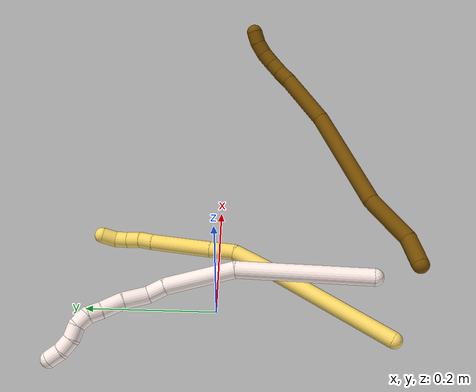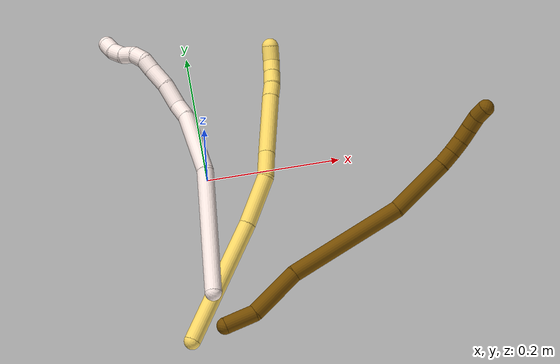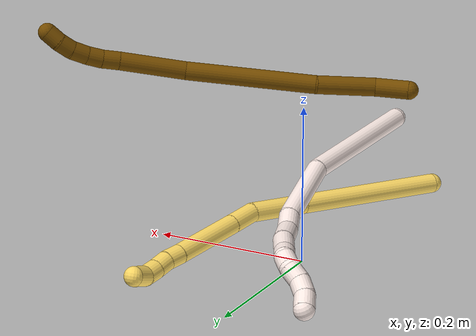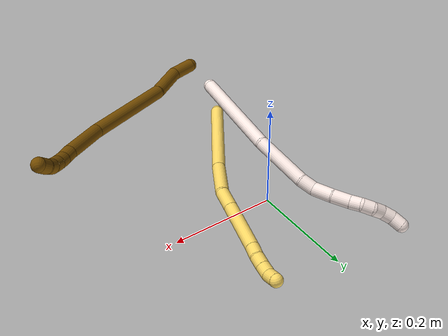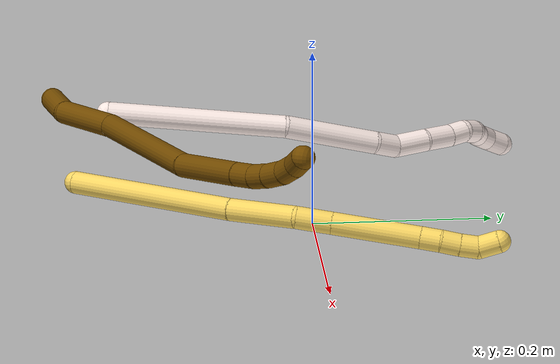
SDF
<sdf version="1.7">
 <world name="default">
  <model name="5">
   <static>0</static>
   <link name="5">
    <collision name="collision-cylinder-e_1_1_4">
     <pose>0.041323 0.085266 -0.027935 -1.88739 0.431592 -0.587481</pose>
     <geometry><cylinder><radius>0.0125</radius><length>0.197567</length></cylinder></geometry>
     <surface>
      <friction><ode><mu>1.16</mu><mu2>1.16</mu2><slip1>0</slip1><slip2>0</slip2></ode></friction>
      <contact><ode><kp>1e+06</kp><kd>1</kd><max_vel>0</max_vel><min_depth>0.001</min_depth></ode></contact>
     </surface>
    </collision>
    <visual name="visual-cylinder-e_1_1_4">
     <pose>0.041323 0.085266 -0.027935 -1.88739 0.431592 -0.587481</pose>
     <geometry><cylinder><radius>0.0125</radius><length>0.197567</length></cylinder></geometry>
     <material><ambient>1 0.858824 0.4 1</ambient></material>
    </visual>
    <collision name="collision-cylinder-e_2_4_5">
     <pose>0.096632 0.205604 -0.066638 -1.86871 0.364215 -0.488404</pose>
     <geometry><cylinder><radius>0.0125</radius><length>0.078527</length></cylinder></geometry>
     <surface>
      <friction><ode><mu>1.16</mu><mu2>1.16</mu2><slip1>0</slip1><slip2>0</slip2></ode></friction>
      <contact><ode><kp>1e+06</kp><kd>1</kd><max_vel>0</max_vel><min_depth>0.001</min_depth></ode></contact>
     </surface>
    </collision>
    <visual name="visual-cylinder-e_2_4_5">
     <pose>0.096632 0.205604 -0.066638 -1.86871 0.364215 -0.488404</pose>
     <geometry><cylinder><radius>0.0125</radius><length>0.078527</length></cylinder></geometry>
     <material><ambient>1 0.858824 0.4 1</ambient></material>
    </visual>
    <collision name="collision-cylinder-e_3_5_6">
     <pose>0.112134 0.257851 -0.086871 -2.07444 0.077148 -0.130477</pose>
     <geometry><cylinder><radius>0.0125</radius><length>0.039338</length></cylinder></geometry>
     <surface>
      <friction><ode><mu>1.16</mu><mu2>1.16</mu2><slip1>0</slip1><slip2>0</slip2></ode></friction>
      <contact><ode><kp>1e+06</kp><kd>1</kd><max_vel>0</max_vel><min_depth>0.001</min_depth></ode></contact>
     </surface>
    </collision>
    <visual name="visual-cylinder-e_3_5_6">
     <pose>0.112134 0.257851 -0.086871 -2.07444 0.077148 -0.130477</pose>
     <geometry><cylinder><radius>0.0125</radius><length>0.039338</length></cylinder></geometry>
     <material><ambient>1 0.858824 0.4 1</ambient></material>
    </visual>
    <collision name="collision-cylinder-e_4_6_7">
     <pose>0.118032 0.31766 -0.119571 -2.06978 0.089995 -0.151351</pose>
     <geometry><cylinder><radius>0.0125</radius><length>0.097503</length></cylinder></geometry>
     <surface>
      <friction><ode><mu>1.16</mu><mu2>1.16</mu2><slip1>0</slip1><slip2>0</slip2></ode></friction>
      <contact><ode><kp>1e+06</kp><kd>1</kd><max_vel>0</max_vel><min_depth>0.001</min_depth></ode></contact>
     </surface>
    </collision>
    <visual name="visual-cylinder-e_4_6_7">
     <pose>0.118032 0.31766 -0.119571 -2.06978 0.089995 -0.151351</pose>
     <geometry><cylinder><radius>0.0125</radius><length>0.097503</length></cylinder></geometry>
     <material><ambient>1 0.858824 0.4 1</ambient></material>
    </visual>
    <collision name="collision-cylinder-e_5_7_8">
     <pose>0.123966 0.369998 -0.147855 -2.05057 0.140982 -0.231626</pose>
     <geometry><cylinder><radius>0.0125</radius><length>0.022096</length></cylinder></geometry>
     <surface>
      <friction><ode><mu>1.16</mu><mu2>1.16</mu2><slip1>0</slip1><slip2>0</slip2></ode></friction>
      <contact><ode><kp>1e+06</kp><kd>1</kd><max_vel>0</max_vel><min_depth>0.001</min_depth></ode></contact>
     </surface>
    </collision>
    <visual name="visual-cylinder-e_5_7_8">
     <pose>0.123966 0.369998 -0.147855 -2.05057 0.140982 -0.231626</pose>
     <geometry><cylinder><radius>0.0125</radius><length>0.022096</length></cylinder></geometry>
     <material><ambient>1 0.858824 0.4 1</ambient></material>
    </visual>
    <collision name="collision-cylinder-e_6_8_9">
     <pose>0.125615 0.388459 -0.158747 -2.15913 0.009225 -0.017245</pose>
     <geometry><cylinder><radius>0.0125</radius><length>0.021057</length></cylinder></geometry>
     <surface>
      <friction><ode><mu>1.16</mu><mu2>1.16</mu2><slip1>0</slip1><slip2>0</slip2></ode></friction>
      <contact><ode><kp>1e+06</kp><kd>1</kd><max_vel>0</max_vel><min_depth>0.001</min_depth></ode></contact>
     </surface>
    </collision>
    <visual name="visual-cylinder-e_6_8_9">
     <pose>0.125615 0.388459 -0.158747 -2.15913 0.009225 -0.017245</pose>
     <geometry><cylinder><radius>0.0125</radius><length>0.021057</length></cylinder></geometry>
     <material><ambient>1 0.858824 0.4 1</ambient></material>
    </visual>
    <collision name="collision-cylinder-e_7_9_10">
     <pose>0.125708 0.406165 -0.169634 -2.08412 -0.000418 0.000716</pose>
     <geometry><cylinder><radius>0.0125</radius><length>0.020545</length></cylinder></geometry>
     <surface>
      <friction><ode><mu>1.16</mu><mu2>1.16</mu2><slip1>0</slip1><slip2>0</slip2></ode></friction>
      <contact><ode><kp>1e+06</kp><kd>1</kd><max_vel>0</max_vel><min_depth>0.001</min_depth></ode></contact>
     </surface>
    </collision>
    <visual name="visual-cylinder-e_7_9_10">
     <pose>0.125708 0.406165 -0.169634 -2.08412 -0.000418 0.000716</pose>
     <geometry><cylinder><radius>0.0125</radius><length>0.020545</length></cylinder></geometry>
     <material><ambient>1 0.858824 0.4 1</ambient></material>
    </visual>
    <collision name="collision-cylinder-e_8_10_2">
     <pose>0.124765 0.426717 -0.175674 -1.65639 -0.080408 0.087594</pose>
     <geometry><cylinder><radius>0.0125</radius><length>0.023367</length></cylinder></geometry>
     <surface>
      <friction><ode><mu>1.16</mu><mu2>1.16</mu2><slip1>0</slip1><slip2>0</slip2></ode></friction>
      <contact><ode><kp>1e+06</kp><kd>1</kd><max_vel>0</max_vel><min_depth>0.001</min_depth></ode></contact>
     </surface>
    </collision>
    <visual name="visual-cylinder-e_8_10_2">
     <pose>0.124765 0.426717 -0.175674 -1.65639 -0.080408 0.087594</pose>
     <geometry><cylinder><radius>0.0125</radius><length>0.023367</length></cylinder></geometry>
     <material><ambient>1 0.858824 0.4 1</ambient></material>
    </visual>
    <collision name="collision-sphere-2">
     <pose>0.123827 0.43832 -0.176669 0 -0 0</pose>
     <geometry><sphere><radius>0.0125</radius></sphere></geometry>
     <surface>
      <friction><ode><mu>1.16</mu><mu2>1.16</mu2><slip1>0</slip1><slip2>0</slip2></ode></friction>
      <contact><ode><kp>1e+06</kp><kd>1</kd><max_vel>0</max_vel><min_depth>0.001</min_depth></ode></contact>
     </surface>
    </collision>
    <visual name="visual-sphere-2">
     <pose>0.123827 0.43832 -0.176669 0 -0 0</pose>
     <geometry><sphere><radius>0.0125</radius></sphere></geometry>
     <material><ambient>1 0.858824 0.4 1</ambient></material>
    </visual>
    <collision name="collision-sphere-10">
     <pose>0.125704 0.415114 -0.174678 0 -0 0</pose>
     <geometry><sphere><radius>0.0125</radius></sphere></geometry>
     <surface>
      <friction><ode><mu>1.16</mu><mu2>1.16</mu2><slip1>0</slip1><slip2>0</slip2></ode></friction>
      <contact><ode><kp>1e+06</kp><kd>1</kd><max_vel>0</max_vel><min_depth>0.001</min_depth></ode></contact>
     </surface>
    </collision>
    <visual name="visual-sphere-10">
     <pose>0.125704 0.415114 -0.174678 0 -0 0</pose>
     <geometry><sphere><radius>0.0125</radius></sphere></geometry>
     <material><ambient>1 0.858824 0.4 1</ambient></material>
    </visual>
    <collision name="collision-sphere-9">
     <pose>0.125712 0.397217 -0.164589 0 -0 0</pose>
     <geometry><sphere><radius>0.0125</radius></sphere></geometry>
     <surface>
      <friction><ode><mu>1.16</mu><mu2>1.16</mu2><slip1>0</slip1><slip2>0</slip2></ode></friction>
      <contact><ode><kp>1e+06</kp><kd>1</kd><max_vel>0</max_vel><min_depth>0.001</min_depth></ode></contact>
     </surface>
    </collision>
    <visual name="visual-sphere-9">
     <pose>0.125712 0.397217 -0.164589 0 -0 0</pose>
     <geometry><sphere><radius>0.0125</radius></sphere></geometry>
     <material><ambient>1 0.858824 0.4 1</ambient></material>
    </visual>
    <collision name="collision-sphere-4">
     <pose>0.082646 0.170532 -0.055869 0 -0 0</pose>
     <geometry><sphere><radius>0.0125</radius></sphere></geometry>
     <surface>
      <friction><ode><mu>1.16</mu><mu2>1.16</mu2><slip1>0</slip1><slip2>0</slip2></ode></friction>
      <contact><ode><kp>1e+06</kp><kd>1</kd><max_vel>0</max_vel><min_depth>0.001</min_depth></ode></contact>
     </surface>
    </collision>
    <visual name="visual-sphere-4">
     <pose>0.082646 0.170532 -0.055869 0 -0 0</pose>
     <geometry><sphere><radius>0.0125</radius></sphere></geometry>
     <material><ambient>1 0.858824 0.4 1</ambient></material>
    </visual>
    <collision name="collision-sphere-1">
     <geometry><sphere><radius>0.0125</radius></sphere></geometry>
     <surface>
      <friction><ode><mu>1.16</mu><mu2>1.16</mu2><slip1>0</slip1><slip2>0</slip2></ode></friction>
      <contact><ode><kp>1e+06</kp><kd>1</kd><max_vel>0</max_vel><min_depth>0.001</min_depth></ode></contact>
     </surface>
    </collision>
    <visual name="visual-sphere-1">
     <geometry><sphere><radius>0.0125</radius></sphere></geometry>
     <material><ambient>1 0.858824 0.4 1</ambient></material>
    </visual>
    <collision name="collision-sphere-8">
     <pose>0.125518 0.379702 -0.152904 0 -0 0</pose>
     <geometry><sphere><radius>0.0125</radius></sphere></geometry>
     <surface>
      <friction><ode><mu>1.16</mu><mu2>1.16</mu2><slip1>0</slip1><slip2>0</slip2></ode></friction>
      <contact><ode><kp>1e+06</kp><kd>1</kd><max_vel>0</max_vel><min_depth>0.001</min_depth></ode></contact>
     </surface>
    </collision>
    <visual name="visual-sphere-8">
     <pose>0.125518 0.379702 -0.152904 0 -0 0</pose>
     <geometry><sphere><radius>0.0125</radius></sphere></geometry>
     <material><ambient>1 0.858824 0.4 1</ambient></material>
    </visual>
    <collision name="collision-sphere-5">
     <pose>0.110618 0.240676 -0.077407 0 -0 0</pose>
     <geometry><sphere><radius>0.0125</radius></sphere></geometry>
     <surface>
      <friction><ode><mu>1.16</mu><mu2>1.16</mu2><slip1>0</slip1><slip2>0</slip2></ode></friction>
      <contact><ode><kp>1e+06</kp><kd>1</kd><max_vel>0</max_vel><min_depth>0.001</min_depth></ode></contact>
     </surface>
    </collision>
    <visual name="visual-sphere-5">
     <pose>0.110618 0.240676 -0.077407 0 -0 0</pose>
     <geometry><sphere><radius>0.0125</radius></sphere></geometry>
     <material><ambient>1 0.858824 0.4 1</ambient></material>
    </visual>
    <collision name="collision-sphere-6">
     <pose>0.11365 0.275026 -0.096336 0 -0 0</pose>
     <geometry><sphere><radius>0.0125</radius></sphere></geometry>
     <surface>
      <friction><ode><mu>1.16</mu><mu2>1.16</mu2><slip1>0</slip1><slip2>0</slip2></ode></friction>
      <contact><ode><kp>1e+06</kp><kd>1</kd><max_vel>0</max_vel><min_depth>0.001</min_depth></ode></contact>
     </surface>
    </collision>
    <visual name="visual-sphere-6">
     <pose>0.11365 0.275026 -0.096336 0 -0 0</pose>
     <geometry><sphere><radius>0.0125</radius></sphere></geometry>
     <material><ambient>1 0.858824 0.4 1</ambient></material>
    </visual>
    <collision name="collision-sphere-7">
     <pose>0.122413 0.360295 -0.142806 0 -0 0</pose>
     <geometry><sphere><radius>0.0125</radius></sphere></geometry>
     <surface>
      <friction><ode><mu>1.16</mu><mu2>1.16</mu2><slip1>0</slip1><slip2>0</slip2></ode></friction>
      <contact><ode><kp>1e+06</kp><kd>1</kd><max_vel>0</max_vel><min_depth>0.001</min_depth></ode></contact>
     </surface>
    </collision>
    <visual name="visual-sphere-7">
     <pose>0.122413 0.360295 -0.142806 0 -0 0</pose>
     <geometry><sphere><radius>0.0125</radius></sphere></geometry>
     <material><ambient>1 0.858824 0.4 1</ambient></material>
    </visual>
    <inertial>
     <pose>0.085108 0.217557 -0.080055 0 -0 0</pose>
     <mass>0.5</mass>
     <inertia>
      <ixx>0.000271</ixx>
      <ixy>0</ixy>
      <ixz>0</ixz>
      <iyy>-0.000398</iyy>
      <iyz>0</iyz>
      <izz>-0.000992</izz>
     </inertia>
    </inertial>
   </link>
   <pose>-0.063461 -0.258639 0.034007 0.387465 0.099796 -0.147041</pose>
  </model>
  <model name="11">
   <static>0</static>
   <link name="11">
    <collision name="collision-cylinder-e_1_1_4">
     <pose>-0.021203 0.093737 -0.018275 -1.76335 -0.218477 0.26469</pose>
     <geometry><cylinder><radius>0.0125</radius><length>0.195654</length></cylinder></geometry>
     <surface>
      <friction><ode><mu>1.16</mu><mu2>1.16</mu2><slip1>0</slip1><slip2>0</slip2></ode></friction>
      <contact><ode><kp>1e+06</kp><kd>1</kd><max_vel>0</max_vel><min_depth>0.001</min_depth></ode></contact>
     </surface>
    </collision>
    <visual name="visual-cylinder-e_1_1_4">
     <pose>-0.021203 0.093737 -0.018275 -1.76335 -0.218477 0.26469</pose>
     <geometry><cylinder><radius>0.0125</radius><length>0.195654</length></cylinder></geometry>
     <material><ambient>1 0.933333 0.909804 1</ambient></material>
    </visual>
    <collision name="collision-cylinder-e_2_4_5">
     <pose>-0.045619 0.239607 -0.033983 -1.52159 -0.061474 0.058523</pose>
     <geometry><cylinder><radius>0.0125</radius><length>0.104592</length></cylinder></geometry>
     <surface>
      <friction><ode><mu>1.16</mu><mu2>1.16</mu2><slip1>0</slip1><slip2>0</slip2></ode></friction>
      <contact><ode><kp>1e+06</kp><kd>1</kd><max_vel>0</max_vel><min_depth>0.001</min_depth></ode></contact>
     </surface>
    </collision>
    <visual name="visual-cylinder-e_2_4_5">
     <pose>-0.045619 0.239607 -0.033983 -1.52159 -0.061474 0.058523</pose>
     <geometry><cylinder><radius>0.0125</radius><length>0.104592</length></cylinder></geometry>
     <material><ambient>1 0.933333 0.909804 1</ambient></material>
    </visual>
    <collision name="collision-cylinder-e_3_5_6">
     <pose>-0.046866 0.304802 -0.028834 -1.3756 0.14666 -0.120573</pose>
     <geometry><cylinder><radius>0.0125</radius><length>0.026916</length></cylinder></geometry>
     <surface>
      <friction><ode><mu>1.16</mu><mu2>1.16</mu2><slip1>0</slip1><slip2>0</slip2></ode></friction>
      <contact><ode><kp>1e+06</kp><kd>1</kd><max_vel>0</max_vel><min_depth>0.001</min_depth></ode></contact>
     </surface>
    </collision>
    <visual name="visual-cylinder-e_3_5_6">
     <pose>-0.046866 0.304802 -0.028834 -1.3756 0.14666 -0.120573</pose>
     <geometry><cylinder><radius>0.0125</radius><length>0.026916</length></cylinder></geometry>
     <material><ambient>1 0.933333 0.909804 1</ambient></material>
    </visual>
    <collision name="collision-cylinder-e_4_6_7">
     <pose>-0.04046 0.335772 -0.029244 -1.73637 0.239783 -0.282645</pose>
     <geometry><cylinder><radius>0.0125</radius><length>0.037386</length></cylinder></geometry>
     <surface>
      <friction><ode><mu>1.16</mu><mu2>1.16</mu2><slip1>0</slip1><slip2>0</slip2></ode></friction>
      <contact><ode><kp>1e+06</kp><kd>1</kd><max_vel>0</max_vel><min_depth>0.001</min_depth></ode></contact>
     </surface>
    </collision>
    <visual name="visual-cylinder-e_4_6_7">
     <pose>-0.04046 0.335772 -0.029244 -1.73637 0.239783 -0.282645</pose>
     <geometry><cylinder><radius>0.0125</radius><length>0.037386</length></cylinder></geometry>
     <material><ambient>1 0.933333 0.909804 1</ambient></material>
    </visual>
    <collision name="collision-cylinder-e_5_7_8">
     <pose>-0.030184 0.368972 -0.032507 -1.58843 0.364553 -0.370894</pose>
     <geometry><cylinder><radius>0.0125</radius><length>0.032737</length></cylinder></geometry>
     <surface>
      <friction><ode><mu>1.16</mu><mu2>1.16</mu2><slip1>0</slip1><slip2>0</slip2></ode></friction>
      <contact><ode><kp>1e+06</kp><kd>1</kd><max_vel>0</max_vel><min_depth>0.001</min_depth></ode></contact>
     </surface>
    </collision>
    <visual name="visual-cylinder-e_5_7_8">
     <pose>-0.030184 0.368972 -0.032507 -1.58843 0.364553 -0.370894</pose>
     <geometry><cylinder><radius>0.0125</radius><length>0.032737</length></cylinder></geometry>
     <material><ambient>1 0.933333 0.909804 1</ambient></material>
    </visual>
    <collision name="collision-cylinder-e_6_8_9">
     <pose>-0.020595 0.39352 -0.034098 -1.7126 0.381716 -0.438346</pose>
     <geometry><cylinder><radius>0.0125</radius><length>0.020153</length></cylinder></geometry>
     <surface>
      <friction><ode><mu>1.16</mu><mu2>1.16</mu2><slip1>0</slip1><slip2>0</slip2></ode></friction>
      <contact><ode><kp>1e+06</kp><kd>1</kd><max_vel>0</max_vel><min_depth>0.001</min_depth></ode></contact>
     </surface>
    </collision>
    <visual name="visual-cylinder-e_6_8_9">
     <pose>-0.020595 0.39352 -0.034098 -1.7126 0.381716 -0.438346</pose>
     <geometry><cylinder><radius>0.0125</radius><length>0.020153</length></cylinder></geometry>
     <material><ambient>1 0.933333 0.909804 1</ambient></material>
    </visual>
    <collision name="collision-cylinder-e_7_9_10">
     <pose>-0.012075 0.411053 -0.032444 -1.22557 0.496661 -0.352842</pose>
     <geometry><cylinder><radius>0.0125</radius><length>0.020006</length></cylinder></geometry>
     <surface>
      <friction><ode><mu>1.16</mu><mu2>1.16</mu2><slip1>0</slip1><slip2>0</slip2></ode></friction>
      <contact><ode><kp>1e+06</kp><kd>1</kd><max_vel>0</max_vel><min_depth>0.001</min_depth></ode></contact>
     </surface>
    </collision>
    <visual name="visual-cylinder-e_7_9_10">
     <pose>-0.012075 0.411053 -0.032444 -1.22557 0.496661 -0.352842</pose>
     <geometry><cylinder><radius>0.0125</radius><length>0.020006</length></cylinder></geometry>
     <material><ambient>1 0.933333 0.909804 1</ambient></material>
    </visual>
    <collision name="collision-cylinder-e_8_10_11">
     <pose>-0.001671 0.424768 -0.023056 -0.70351 0.590612 -0.222374</pose>
     <geometry><cylinder><radius>0.0125</radius><length>0.020247</length></cylinder></geometry>
     <surface>
      <friction><ode><mu>1.16</mu><mu2>1.16</mu2><slip1>0</slip1><slip2>0</slip2></ode></friction>
      <contact><ode><kp>1e+06</kp><kd>1</kd><max_vel>0</max_vel><min_depth>0.001</min_depth></ode></contact>
     </surface>
    </collision>
    <visual name="visual-cylinder-e_8_10_11">
     <pose>-0.001671 0.424768 -0.023056 -0.70351 0.590612 -0.222374</pose>
     <geometry><cylinder><radius>0.0125</radius><length>0.020247</length></cylinder></geometry>
     <material><ambient>1 0.933333 0.909804 1</ambient></material>
    </visual>
    <collision name="collision-cylinder-e_9_11_12">
     <pose>0.007908 0.438565 -0.011629 -1.03038 0.384302 -0.219422</pose>
     <geometry><cylinder><radius>0.0125</radius><length>0.021028</length></cylinder></geometry>
     <surface>
      <friction><ode><mu>1.16</mu><mu2>1.16</mu2><slip1>0</slip1><slip2>0</slip2></ode></friction>
      <contact><ode><kp>1e+06</kp><kd>1</kd><max_vel>0</max_vel><min_depth>0.001</min_depth></ode></contact>
     </surface>
    </collision>
    <visual name="visual-cylinder-e_9_11_12">
     <pose>0.007908 0.438565 -0.011629 -1.03038 0.384302 -0.219422</pose>
     <geometry><cylinder><radius>0.0125</radius><length>0.021028</length></cylinder></geometry>
     <material><ambient>1 0.933333 0.909804 1</ambient></material>
    </visual>
    <collision name="collision-cylinder-e_10_12_2">
     <pose>0.013143 0.456842 -0.002983 -1.21992 0.121861 -0.085218</pose>
     <geometry><cylinder><radius>0.0125</radius><length>0.021282</length></cylinder></geometry>
     <surface>
      <friction><ode><mu>1.16</mu><mu2>1.16</mu2><slip1>0</slip1><slip2>0</slip2></ode></friction>
      <contact><ode><kp>1e+06</kp><kd>1</kd><max_vel>0</max_vel><min_depth>0.001</min_depth></ode></contact>
     </surface>
    </collision>
    <visual name="visual-cylinder-e_10_12_2">
     <pose>0.013143 0.456842 -0.002983 -1.21992 0.121861 -0.085218</pose>
     <geometry><cylinder><radius>0.0125</radius><length>0.021282</length></cylinder></geometry>
     <material><ambient>1 0.933333 0.909804 1</ambient></material>
    </visual>
    <collision name="collision-sphere-2">
     <pose>0.014437 0.466761 0.000647 0 -0 0</pose>
     <geometry><sphere><radius>0.0125</radius></sphere></geometry>
     <surface>
      <friction><ode><mu>1.16</mu><mu2>1.16</mu2><slip1>0</slip1><slip2>0</slip2></ode></friction>
      <contact><ode><kp>1e+06</kp><kd>1</kd><max_vel>0</max_vel><min_depth>0.001</min_depth></ode></contact>
     </surface>
    </collision>
    <visual name="visual-sphere-2">
     <pose>0.014437 0.466761 0.000647 0 -0 0</pose>
     <geometry><sphere><radius>0.0125</radius></sphere></geometry>
     <material><ambient>1 0.933333 0.909804 1</ambient></material>
    </visual>
    <collision name="collision-sphere-12">
     <pose>0.01185 0.446923 -0.006614 0 -0 0</pose>
     <geometry><sphere><radius>0.0125</radius></sphere></geometry>
     <surface>
      <friction><ode><mu>1.16</mu><mu2>1.16</mu2><slip1>0</slip1><slip2>0</slip2></ode></friction>
      <contact><ode><kp>1e+06</kp><kd>1</kd><max_vel>0</max_vel><min_depth>0.001</min_depth></ode></contact>
     </surface>
    </collision>
    <visual name="visual-sphere-12">
     <pose>0.01185 0.446923 -0.006614 0 -0 0</pose>
     <geometry><sphere><radius>0.0125</radius></sphere></geometry>
     <material><ambient>1 0.933333 0.909804 1</ambient></material>
    </visual>
    <collision name="collision-sphere-11">
     <pose>0.003966 0.430207 -0.016644 0 -0 0</pose>
     <geometry><sphere><radius>0.0125</radius></sphere></geometry>
     <surface>
      <friction><ode><mu>1.16</mu><mu2>1.16</mu2><slip1>0</slip1><slip2>0</slip2></ode></friction>
      <contact><ode><kp>1e+06</kp><kd>1</kd><max_vel>0</max_vel><min_depth>0.001</min_depth></ode></contact>
     </surface>
    </collision>
    <visual name="visual-sphere-11">
     <pose>0.003966 0.430207 -0.016644 0 -0 0</pose>
     <geometry><sphere><radius>0.0125</radius></sphere></geometry>
     <material><ambient>1 0.933333 0.909804 1</ambient></material>
    </visual>
    <collision name="collision-sphere-10">
     <pose>-0.007309 0.419328 -0.029468 0 -0 0</pose>
     <geometry><sphere><radius>0.0125</radius></sphere></geometry>
     <surface>
      <friction><ode><mu>1.16</mu><mu2>1.16</mu2><slip1>0</slip1><slip2>0</slip2></ode></friction>
      <contact><ode><kp>1e+06</kp><kd>1</kd><max_vel>0</max_vel><min_depth>0.001</min_depth></ode></contact>
     </surface>
    </collision>
    <visual name="visual-sphere-10">
     <pose>-0.007309 0.419328 -0.029468 0 -0 0</pose>
     <geometry><sphere><radius>0.0125</radius></sphere></geometry>
     <material><ambient>1 0.933333 0.909804 1</ambient></material>
    </visual>
    <collision name="collision-sphere-9">
     <pose>-0.016841 0.402778 -0.03542 0 -0 0</pose>
     <geometry><sphere><radius>0.0125</radius></sphere></geometry>
     <surface>
      <friction><ode><mu>1.16</mu><mu2>1.16</mu2><slip1>0</slip1><slip2>0</slip2></ode></friction>
      <contact><ode><kp>1e+06</kp><kd>1</kd><max_vel>0</max_vel><min_depth>0.001</min_depth></ode></contact>
     </surface>
    </collision>
    <visual name="visual-sphere-9">
     <pose>-0.016841 0.402778 -0.03542 0 -0 0</pose>
     <geometry><sphere><radius>0.0125</radius></sphere></geometry>
     <material><ambient>1 0.933333 0.909804 1</ambient></material>
    </visual>
    <collision name="collision-sphere-4">
     <pose>-0.042407 0.187473 -0.036551 0 -0 0</pose>
     <geometry><sphere><radius>0.0125</radius></sphere></geometry>
     <surface>
      <friction><ode><mu>1.16</mu><mu2>1.16</mu2><slip1>0</slip1><slip2>0</slip2></ode></friction>
      <contact><ode><kp>1e+06</kp><kd>1</kd><max_vel>0</max_vel><min_depth>0.001</min_depth></ode></contact>
     </surface>
    </collision>
    <visual name="visual-sphere-4">
     <pose>-0.042407 0.187473 -0.036551 0 -0 0</pose>
     <geometry><sphere><radius>0.0125</radius></sphere></geometry>
     <material><ambient>1 0.933333 0.909804 1</ambient></material>
    </visual>
    <collision name="collision-sphere-1">
     <geometry><sphere><radius>0.0125</radius></sphere></geometry>
     <surface>
      <friction><ode><mu>1.16</mu><mu2>1.16</mu2><slip1>0</slip1><slip2>0</slip2></ode></friction>
      <contact><ode><kp>1e+06</kp><kd>1</kd><max_vel>0</max_vel><min_depth>0.001</min_depth></ode></contact>
     </surface>
    </collision>
    <visual name="visual-sphere-1">
     <geometry><sphere><radius>0.0125</radius></sphere></geometry>
     <material><ambient>1 0.933333 0.909804 1</ambient></material>
    </visual>
    <collision name="collision-sphere-8">
     <pose>-0.024349 0.384263 -0.032777 0 -0 0</pose>
     <geometry><sphere><radius>0.0125</radius></sphere></geometry>
     <surface>
      <friction><ode><mu>1.16</mu><mu2>1.16</mu2><slip1>0</slip1><slip2>0</slip2></ode></friction>
      <contact><ode><kp>1e+06</kp><kd>1</kd><max_vel>0</max_vel><min_depth>0.001</min_depth></ode></contact>
     </surface>
    </collision>
    <visual name="visual-sphere-8">
     <pose>-0.024349 0.384263 -0.032777 0 -0 0</pose>
     <geometry><sphere><radius>0.0125</radius></sphere></geometry>
     <material><ambient>1 0.933333 0.909804 1</ambient></material>
    </visual>
    <collision name="collision-sphere-5">
     <pose>-0.048832 0.291742 -0.031416 0 -0 0</pose>
     <geometry><sphere><radius>0.0125</radius></sphere></geometry>
     <surface>
      <friction><ode><mu>1.16</mu><mu2>1.16</mu2><slip1>0</slip1><slip2>0</slip2></ode></friction>
      <contact><ode><kp>1e+06</kp><kd>1</kd><max_vel>0</max_vel><min_depth>0.001</min_depth></ode></contact>
     </surface>
    </collision>
    <visual name="visual-sphere-5">
     <pose>-0.048832 0.291742 -0.031416 0 -0 0</pose>
     <geometry><sphere><radius>0.0125</radius></sphere></geometry>
     <material><ambient>1 0.933333 0.909804 1</ambient></material>
    </visual>
    <collision name="collision-sphere-6">
     <pose>-0.044899 0.317863 -0.026251 0 -0 0</pose>
     <geometry><sphere><radius>0.0125</radius></sphere></geometry>
     <surface>
      <friction><ode><mu>1.16</mu><mu2>1.16</mu2><slip1>0</slip1><slip2>0</slip2></ode></friction>
      <contact><ode><kp>1e+06</kp><kd>1</kd><max_vel>0</max_vel><min_depth>0.001</min_depth></ode></contact>
     </surface>
    </collision>
    <visual name="visual-sphere-6">
     <pose>-0.044899 0.317863 -0.026251 0 -0 0</pose>
     <geometry><sphere><radius>0.0125</radius></sphere></geometry>
     <material><ambient>1 0.933333 0.909804 1</ambient></material>
    </visual>
    <collision name="collision-sphere-7">
     <pose>-0.03602 0.353682 -0.032237 0 -0 0</pose>
     <geometry><sphere><radius>0.0125</radius></sphere></geometry>
     <surface>
      <friction><ode><mu>1.16</mu><mu2>1.16</mu2><slip1>0</slip1><slip2>0</slip2></ode></friction>
      <contact><ode><kp>1e+06</kp><kd>1</kd><max_vel>0</max_vel><min_depth>0.001</min_depth></ode></contact>
     </surface>
    </collision>
    <visual name="visual-sphere-7">
     <pose>-0.03602 0.353682 -0.032237 0 -0 0</pose>
     <geometry><sphere><radius>0.0125</radius></sphere></geometry>
     <material><ambient>1 0.933333 0.909804 1</ambient></material>
    </visual>
    <inertial>
     <pose>-0.025853 0.239872 -0.024349 0 -0 0</pose>
     <mass>0.5</mass>
     <inertia>
      <ixx>0.000876</ixx>
      <ixy>0</ixy>
      <ixz>0</ixz>
      <iyy>0.000126</iyy>
      <iyz>0</iyz>
      <izz>-0.000586</izz>
     </inertia>
    </inertial>
   </link>
   <pose>-0.024417 -0.223026 0.129424 -2.93791 -0.320107 -3.03576</pose>
  </model>
  <model name="12">
   <static>0</static>
   <link name="12">
    <collision name="collision-cylinder-e_1_1_4">
     <pose>0.017038 -0.003378 -0.015426 2.92602 0.823333 2.65572</pose>
     <geometry><cylinder><radius>0.0125</radius><length>0.046462</length></cylinder></geometry>
     <surface>
      <friction><ode><mu>1.16</mu><mu2>1.16</mu2><slip1>0</slip1><slip2>0</slip2></ode></friction>
      <contact><ode><kp>1e+06</kp><kd>1</kd><max_vel>0</max_vel><min_depth>0.001</min_depth></ode></contact>
     </surface>
    </collision>
    <visual name="visual-cylinder-e_1_1_4">
     <pose>0.017038 -0.003378 -0.015426 2.92602 0.823333 2.65572</pose>
     <geometry><cylinder><radius>0.0125</radius><length>0.046462</length></cylinder></geometry>
     <material><ambient>0.466667 0.301961 0 1</ambient></material>
    </visual>
    <collision name="collision-cylinder-e_2_4_5">
     <pose>0.052177 -0.008256 -0.066744 3.09982 0.466752 2.96627</pose>
     <geometry><cylinder><radius>0.0125</radius><length>0.080451</length></cylinder></geometry>
     <surface>
      <friction><ode><mu>1.16</mu><mu2>1.16</mu2><slip1>0</slip1><slip2>0</slip2></ode></friction>
      <contact><ode><kp>1e+06</kp><kd>1</kd><max_vel>0</max_vel><min_depth>0.001</min_depth></ode></contact>
     </surface>
    </collision>
    <visual name="visual-cylinder-e_2_4_5">
     <pose>0.052177 -0.008256 -0.066744 3.09982 0.466752 2.96627</pose>
     <geometry><cylinder><radius>0.0125</radius><length>0.080451</length></cylinder></geometry>
     <material><ambient>0.466667 0.301961 0 1</ambient></material>
    </visual>
    <collision name="collision-cylinder-e_3_5_6">
     <pose>0.126883 -0.016175 -0.169697 3.04618 0.6988 2.88101</pose>
     <geometry><cylinder><radius>0.0125</radius><length>0.175984</length></cylinder></geometry>
     <surface>
      <friction><ode><mu>1.16</mu><mu2>1.16</mu2><slip1>0</slip1><slip2>0</slip2></ode></friction>
      <contact><ode><kp>1e+06</kp><kd>1</kd><max_vel>0</max_vel><min_depth>0.001</min_depth></ode></contact>
     </surface>
    </collision>
    <visual name="visual-cylinder-e_3_5_6">
     <pose>0.126883 -0.016175 -0.169697 3.04618 0.6988 2.88101</pose>
     <geometry><cylinder><radius>0.0125</radius><length>0.175984</length></cylinder></geometry>
     <material><ambient>0.466667 0.301961 0 1</ambient></material>
    </visual>
    <collision name="collision-cylinder-e_4_6_7">
     <pose>0.205661 -0.019994 -0.276181 -3.07576 0.511421 -2.89102</pose>
     <geometry><cylinder><radius>0.0125</radius><length>0.090609</length></cylinder></geometry>
     <surface>
      <friction><ode><mu>1.16</mu><mu2>1.16</mu2><slip1>0</slip1><slip2>0</slip2></ode></friction>
      <contact><ode><kp>1e+06</kp><kd>1</kd><max_vel>0</max_vel><min_depth>0.001</min_depth></ode></contact>
     </surface>
    </collision>
    <visual name="visual-cylinder-e_4_6_7">
     <pose>0.205661 -0.019994 -0.276181 -3.07576 0.511421 -2.89102</pose>
     <geometry><cylinder><radius>0.0125</radius><length>0.090609</length></cylinder></geometry>
     <material><ambient>0.466667 0.301961 0 1</ambient></material>
    </visual>
    <collision name="collision-cylinder-e_5_7_8">
     <pose>0.232626 -0.01671 -0.326324 -3.07775 0.41958 -2.84388</pose>
     <geometry><cylinder><radius>0.0125</radius><length>0.023525</length></cylinder></geometry>
     <surface>
      <friction><ode><mu>1.16</mu><mu2>1.16</mu2><slip1>0</slip1><slip2>0</slip2></ode></friction>
      <contact><ode><kp>1e+06</kp><kd>1</kd><max_vel>0</max_vel><min_depth>0.001</min_depth></ode></contact>
     </surface>
    </collision>
    <visual name="visual-cylinder-e_5_7_8">
     <pose>0.232626 -0.01671 -0.326324 -3.07775 0.41958 -2.84388</pose>
     <geometry><cylinder><radius>0.0125</radius><length>0.023525</length></cylinder></geometry>
     <material><ambient>0.466667 0.301961 0 1</ambient></material>
    </visual>
    <collision name="collision-cylinder-e_6_8_9">
     <pose>0.241646 -0.014045 -0.34634 -2.93181 0.418627 -2.22137</pose>
     <geometry><cylinder><radius>0.0125</radius><length>0.020804</length></cylinder></geometry>
     <surface>
      <friction><ode><mu>1.16</mu><mu2>1.16</mu2><slip1>0</slip1><slip2>0</slip2></ode></friction>
      <contact><ode><kp>1e+06</kp><kd>1</kd><max_vel>0</max_vel><min_depth>0.001</min_depth></ode></contact>
     </surface>
    </collision>
    <visual name="visual-cylinder-e_6_8_9">
     <pose>0.241646 -0.014045 -0.34634 -2.93181 0.418627 -2.22137</pose>
     <geometry><cylinder><radius>0.0125</radius><length>0.020804</length></cylinder></geometry>
     <material><ambient>0.466667 0.301961 0 1</ambient></material>
    </visual>
    <collision name="collision-cylinder-e_7_9_10">
     <pose>0.250009 -0.00876 -0.365311 -2.81235 0.384204 -1.72785</pose>
     <geometry><cylinder><radius>0.0125</radius><length>0.022058</length></cylinder></geometry>
     <surface>
      <friction><ode><mu>1.16</mu><mu2>1.16</mu2><slip1>0</slip1><slip2>0</slip2></ode></friction>
      <contact><ode><kp>1e+06</kp><kd>1</kd><max_vel>0</max_vel><min_depth>0.001</min_depth></ode></contact>
     </surface>
    </collision>
    <visual name="visual-cylinder-e_7_9_10">
     <pose>0.250009 -0.00876 -0.365311 -2.81235 0.384204 -1.72785</pose>
     <geometry><cylinder><radius>0.0125</radius><length>0.022058</length></cylinder></geometry>
     <material><ambient>0.466667 0.301961 0 1</ambient></material>
    </visual>
    <collision name="collision-cylinder-e_8_10_11">
     <pose>0.258296 -0.000568 -0.382693 -2.57649 0.42715 -1.28323</pose>
     <geometry><cylinder><radius>0.0125</radius><length>0.020051</length></cylinder></geometry>
     <surface>
      <friction><ode><mu>1.16</mu><mu2>1.16</mu2><slip1>0</slip1><slip2>0</slip2></ode></friction>
      <contact><ode><kp>1e+06</kp><kd>1</kd><max_vel>0</max_vel><min_depth>0.001</min_depth></ode></contact>
     </surface>
    </collision>
    <visual name="visual-cylinder-e_8_10_11">
     <pose>0.258296 -0.000568 -0.382693 -2.57649 0.42715 -1.28323</pose>
     <geometry><cylinder><radius>0.0125</radius><length>0.020051</length></cylinder></geometry>
     <material><ambient>0.466667 0.301961 0 1</ambient></material>
    </visual>
    <collision name="collision-cylinder-e_9_11_2">
     <pose>0.268236 0.009709 -0.396565 -2.42322 0.615098 -1.40425</pose>
     <geometry><cylinder><radius>0.0125</radius><length>0.020055</length></cylinder></geometry>
     <surface>
      <friction><ode><mu>1.16</mu><mu2>1.16</mu2><slip1>0</slip1><slip2>0</slip2></ode></friction>
      <contact><ode><kp>1e+06</kp><kd>1</kd><max_vel>0</max_vel><min_depth>0.001</min_depth></ode></contact>
     </surface>
    </collision>
    <visual name="visual-cylinder-e_9_11_2">
     <pose>0.268236 0.009709 -0.396565 -2.42322 0.615098 -1.40425</pose>
     <geometry><cylinder><radius>0.0125</radius><length>0.020055</length></cylinder></geometry>
     <material><ambient>0.466667 0.301961 0 1</ambient></material>
    </visual>
    <collision name="collision-sphere-2">
     <pose>0.274022 0.015099 -0.402731 0 -0 0</pose>
     <geometry><sphere><radius>0.0125</radius></sphere></geometry>
     <surface>
      <friction><ode><mu>1.16</mu><mu2>1.16</mu2><slip1>0</slip1><slip2>0</slip2></ode></friction>
      <contact><ode><kp>1e+06</kp><kd>1</kd><max_vel>0</max_vel><min_depth>0.001</min_depth></ode></contact>
     </surface>
    </collision>
    <visual name="visual-sphere-2">
     <pose>0.274022 0.015099 -0.402731 0 -0 0</pose>
     <geometry><sphere><radius>0.0125</radius></sphere></geometry>
     <material><ambient>0.466667 0.301961 0 1</ambient></material>
    </visual>
    <collision name="collision-sphere-11">
     <pose>0.262449 0.004319 -0.390399 0 -0 0</pose>
     <geometry><sphere><radius>0.0125</radius></sphere></geometry>
     <surface>
      <friction><ode><mu>1.16</mu><mu2>1.16</mu2><slip1>0</slip1><slip2>0</slip2></ode></friction>
      <contact><ode><kp>1e+06</kp><kd>1</kd><max_vel>0</max_vel><min_depth>0.001</min_depth></ode></contact>
     </surface>
    </collision>
    <visual name="visual-sphere-11">
     <pose>0.262449 0.004319 -0.390399 0 -0 0</pose>
     <geometry><sphere><radius>0.0125</radius></sphere></geometry>
     <material><ambient>0.466667 0.301961 0 1</ambient></material>
    </visual>
    <collision name="collision-sphere-10">
     <pose>0.254143 -0.005454 -0.374987 0 -0 0</pose>
     <geometry><sphere><radius>0.0125</radius></sphere></geometry>
     <surface>
      <friction><ode><mu>1.16</mu><mu2>1.16</mu2><slip1>0</slip1><slip2>0</slip2></ode></friction>
      <contact><ode><kp>1e+06</kp><kd>1</kd><max_vel>0</max_vel><min_depth>0.001</min_depth></ode></contact>
     </surface>
    </collision>
    <visual name="visual-sphere-10">
     <pose>0.254143 -0.005454 -0.374987 0 -0 0</pose>
     <geometry><sphere><radius>0.0125</radius></sphere></geometry>
     <material><ambient>0.466667 0.301961 0 1</ambient></material>
    </visual>
    <collision name="collision-sphere-9">
     <pose>0.245875 -0.012066 -0.355636 0 -0 0</pose>
     <geometry><sphere><radius>0.0125</radius></sphere></geometry>
     <surface>
      <friction><ode><mu>1.16</mu><mu2>1.16</mu2><slip1>0</slip1><slip2>0</slip2></ode></friction>
      <contact><ode><kp>1e+06</kp><kd>1</kd><max_vel>0</max_vel><min_depth>0.001</min_depth></ode></contact>
     </surface>
    </collision>
    <visual name="visual-sphere-9">
     <pose>0.245875 -0.012066 -0.355636 0 -0 0</pose>
     <geometry><sphere><radius>0.0125</radius></sphere></geometry>
     <material><ambient>0.466667 0.301961 0 1</ambient></material>
    </visual>
    <collision name="collision-sphere-4">
     <pose>0.034076 -0.006756 -0.030853 0 -0 0</pose>
     <geometry><sphere><radius>0.0125</radius></sphere></geometry>
     <surface>
      <friction><ode><mu>1.16</mu><mu2>1.16</mu2><slip1>0</slip1><slip2>0</slip2></ode></friction>
      <contact><ode><kp>1e+06</kp><kd>1</kd><max_vel>0</max_vel><min_depth>0.001</min_depth></ode></contact>
     </surface>
    </collision>
    <visual name="visual-sphere-4">
     <pose>0.034076 -0.006756 -0.030853 0 -0 0</pose>
     <geometry><sphere><radius>0.0125</radius></sphere></geometry>
     <material><ambient>0.466667 0.301961 0 1</ambient></material>
    </visual>
    <collision name="collision-sphere-1">
     <geometry><sphere><radius>0.0125</radius></sphere></geometry>
     <surface>
      <friction><ode><mu>1.16</mu><mu2>1.16</mu2><slip1>0</slip1><slip2>0</slip2></ode></friction>
      <contact><ode><kp>1e+06</kp><kd>1</kd><max_vel>0</max_vel><min_depth>0.001</min_depth></ode></contact>
     </surface>
    </collision>
    <visual name="visual-sphere-1">
     <geometry><sphere><radius>0.0125</radius></sphere></geometry>
     <material><ambient>0.466667 0.301961 0 1</ambient></material>
    </visual>
    <collision name="collision-sphere-8">
     <pose>0.237418 -0.016024 -0.337045 0 -0 0</pose>
     <geometry><sphere><radius>0.0125</radius></sphere></geometry>
     <surface>
      <friction><ode><mu>1.16</mu><mu2>1.16</mu2><slip1>0</slip1><slip2>0</slip2></ode></friction>
      <contact><ode><kp>1e+06</kp><kd>1</kd><max_vel>0</max_vel><min_depth>0.001</min_depth></ode></contact>
     </surface>
    </collision>
    <visual name="visual-sphere-8">
     <pose>0.237418 -0.016024 -0.337045 0 -0 0</pose>
     <geometry><sphere><radius>0.0125</radius></sphere></geometry>
     <material><ambient>0.466667 0.301961 0 1</ambient></material>
    </visual>
    <collision name="collision-sphere-5">
     <pose>0.070278 -0.009757 -0.102636 0 -0 0</pose>
     <geometry><sphere><radius>0.0125</radius></sphere></geometry>
     <surface>
      <friction><ode><mu>1.16</mu><mu2>1.16</mu2><slip1>0</slip1><slip2>0</slip2></ode></friction>
      <contact><ode><kp>1e+06</kp><kd>1</kd><max_vel>0</max_vel><min_depth>0.001</min_depth></ode></contact>
     </surface>
    </collision>
    <visual name="visual-sphere-5">
     <pose>0.070278 -0.009757 -0.102636 0 -0 0</pose>
     <geometry><sphere><radius>0.0125</radius></sphere></geometry>
     <material><ambient>0.466667 0.301961 0 1</ambient></material>
    </visual>
    <collision name="collision-sphere-6">
     <pose>0.183488 -0.022593 -0.236759 0 -0 0</pose>
     <geometry><sphere><radius>0.0125</radius></sphere></geometry>
     <surface>
      <friction><ode><mu>1.16</mu><mu2>1.16</mu2><slip1>0</slip1><slip2>0</slip2></ode></friction>
      <contact><ode><kp>1e+06</kp><kd>1</kd><max_vel>0</max_vel><min_depth>0.001</min_depth></ode></contact>
     </surface>
    </collision>
    <visual name="visual-sphere-6">
     <pose>0.183488 -0.022593 -0.236759 0 -0 0</pose>
     <geometry><sphere><radius>0.0125</radius></sphere></geometry>
     <material><ambient>0.466667 0.301961 0 1</ambient></material>
    </visual>
    <collision name="collision-sphere-7">
     <pose>0.227834 -0.017395 -0.315604 0 -0 0</pose>
     <geometry><sphere><radius>0.0125</radius></sphere></geometry>
     <surface>
      <friction><ode><mu>1.16</mu><mu2>1.16</mu2><slip1>0</slip1><slip2>0</slip2></ode></friction>
      <contact><ode><kp>1e+06</kp><kd>1</kd><max_vel>0</max_vel><min_depth>0.001</min_depth></ode></contact>
     </surface>
    </collision>
    <visual name="visual-sphere-7">
     <pose>0.227834 -0.017395 -0.315604 0 -0 0</pose>
     <geometry><sphere><radius>0.0125</radius></sphere></geometry>
     <material><ambient>0.466667 0.301961 0 1</ambient></material>
    </visual>
    <inertial>
     <pose>0.145053 -0.012349 -0.199084 0 -0 0</pose>
     <mass>0.5</mass>
     <inertia>
      <ixx>-0.000343</ixx>
      <ixy>0</ixy>
      <ixz>0</ixz>
      <iyy>0.000657</iyy>
      <iyz>0</iyz>
      <izz>-0.000361</izz>
     </inertia>
    </inertial>
   </link>
   <pose>-0.016517 -0.283173 0.149974 1.60253 -0.20111 -0.481072</pose>
  </model>
 </world>
</sdf>
